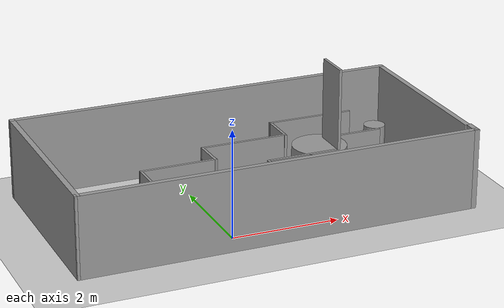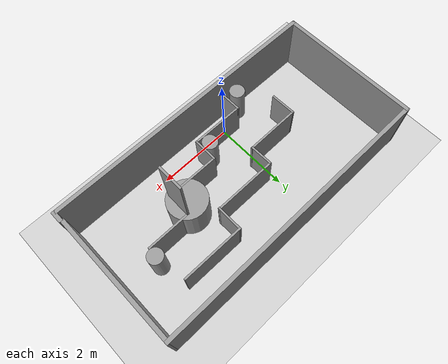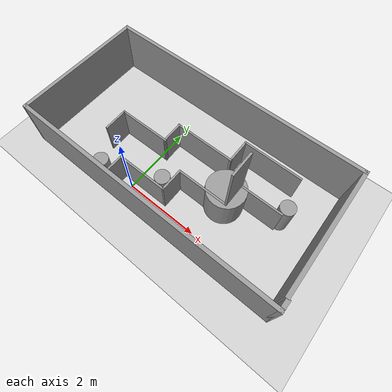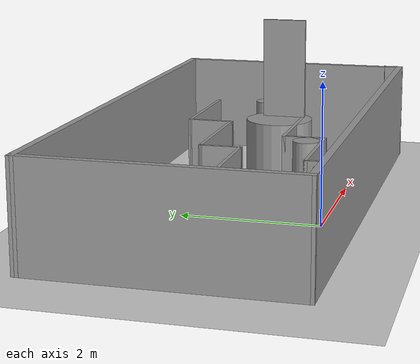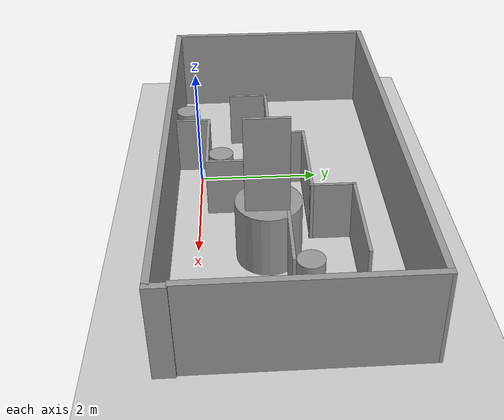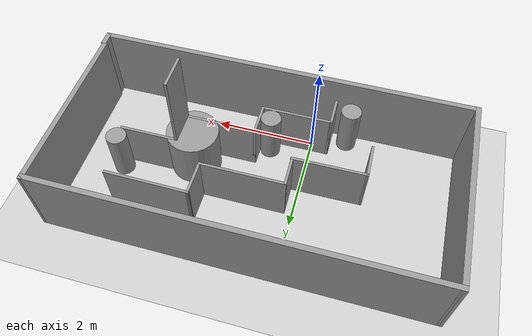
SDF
<sdf version="1.7">
 <world name="default">
  <light name="sun" type="directional">
   <pose>0 0 10 0 -0 0</pose>
   <diffuse>0.8 0.8 0.8 1</diffuse>
   <specular>0.2 0.2 0.2 1</specular>
   <attenuation>
    <range>1000</range>
    <constant>0.9</constant>
    <linear>0.01</linear>
    <quadratic>0.001</quadratic>
   </attenuation>
   <direction>-0.5 0.1 -0.9</direction>
   <spot><inner_angle>0</inner_angle><outer_angle>0</outer_angle><falloff>0</falloff></spot>
  </light>
  <model name="ground_plane">
   <static>1</static>
   <link name="link">
    <collision name="collision">
     <geometry><plane><normal>0 0 1</normal><size>100 100</size></plane></geometry>
     <surface><friction><ode><mu>100</mu><mu2>50</mu2></ode></friction></surface>
    </collision>
    <visual name="visual">
     <cast_shadows>0</cast_shadows>
     <geometry><plane><normal>0 0 1</normal><size>100 100</size></plane></geometry>
     <material>
      <script><uri>file://media/materials/scripts/gazebo.material</uri><name>Gazebo/Grey</name></script>
     </material>
    </visual>
   </link>
  </model>
  <gravity>0 0 -9.8</gravity>
  <magnetic_field>6e-06 2.3e-05 -4.2e-05</magnetic_field>
  <atmosphere type="adiabatic"/>
  <physics type="ode">
   <max_step_size>0.001</max_step_size>
   <real_time_factor>1</real_time_factor>
   <real_time_update_rate>1000</real_time_update_rate>
  </physics>
  <scene><ambient>0.4 0.4 0.4 1</ambient><background>0.7 0.7 0.7 1</background><shadows>1</shadows></scene>
  <audio><device>default</device></audio>
  <spherical_coordinates>
   <surface_model>EARTH_WGS84</surface_model>
   <latitude_deg>0</latitude_deg>
   <longitude_deg>0</longitude_deg>
   <elevation>0</elevation>
   <heading_deg>0</heading_deg>
  </spherical_coordinates>
  <model name="Parcial_ampliado">
   <pose>0.760831 1.34394 0 0 -0 0</pose>
   <link name="Wall_0">
    <collision name="Wall_0_Collision">
     <geometry><box><size>3.41 0.1 1.5</size></box></geometry>
     <pose>0 0 0.75 0 -0 0</pose>
    </collision>
    <visual name="Wall_0_Visual">
     <pose>0 0 0.75 0 -0 0</pose>
     <geometry><box><size>3.41 0.1 1.5</size></box></geometry>
     <material>
      <script><uri>file://media/materials/scripts/gazebo.material</uri><name>Gazebo/Grey</name></script>
      <ambient>1 1 1 1</ambient>
     </material>
     <meta><layer>0</layer></meta>
    </visual>
    <pose>3.64507 0.144998 0 0 -0 1.57382</pose>
   </link>
   <link name="Wall_1">
    <collision name="Wall_1_Collision">
     <geometry><box><size>7.42 0.1 1.5</size></box></geometry>
     <pose>0 0 0.75 0 -0 0</pose>
    </collision>
    <visual name="Wall_1_Visual">
     <pose>0 0 0.75 0 -0 0</pose>
     <geometry><box><size>7.42 0.1 1.5</size></box></geometry>
     <material>
      <script><uri>file://media/materials/scripts/gazebo.material</uri><name>Gazebo/Grey</name></script>
      <ambient>1 1 1 1</ambient>
     </material>
     <meta><layer>0</layer></meta>
    </visual>
    <pose>-0.019931 1.8 0 0 -0 3.14159</pose>
   </link>
   <link name="Wall_10">
    <collision name="Wall_10_Collision">
     <geometry><box><size>0.65 0.05 1</size></box></geometry>
     <pose>0 0 0.5 0 -0 0</pose>
    </collision>
    <visual name="Wall_10_Visual">
     <pose>0 0 0.5 0 -0 0</pose>
     <geometry><box><size>0.65 0.05 1</size></box></geometry>
     <material>
      <script><uri>file://media/materials/scripts/gazebo.material</uri><name>Gazebo/Grey</name></script>
      <ambient>1 1 1 1</ambient>
     </material>
     <meta><layer>0</layer></meta>
    </visual>
    <pose>-1.09993 -1.49 0 0 -0 1.5708</pose>
   </link>
   <link name="Wall_11">
    <collision name="Wall_11_Collision">
     <geometry><box><size>1.4 0.05 1</size></box></geometry>
     <pose>0 0 0.5 0 -0 0</pose>
    </collision>
    <visual name="Wall_11_Visual">
     <pose>0 0 0.5 0 -0 0</pose>
     <geometry><box><size>1.4 0.05 1</size></box></geometry>
     <material>
      <script><uri>file://media/materials/scripts/gazebo.material</uri><name>Gazebo/Grey</name></script>
      <ambient>1 1 1 1</ambient>
     </material>
     <meta><layer>0</layer></meta>
    </visual>
    <pose>-0.424931 -1.19 0 0 -0 0</pose>
   </link>
   <link name="Wall_12">
    <collision name="Wall_12_Collision">
     <geometry><box><size>0.65 0.05 1</size></box></geometry>
     <pose>0 0 0.5 0 -0 0</pose>
    </collision>
    <visual name="Wall_12_Visual">
     <pose>0 0 0.5 0 -0 0</pose>
     <geometry><box><size>0.65 0.05 1</size></box></geometry>
     <material>
      <script><uri>file://media/materials/scripts/gazebo.material</uri><name>Gazebo/Grey</name></script>
      <ambient>1 1 1 1</ambient>
     </material>
     <meta><layer>0</layer></meta>
    </visual>
    <pose>0.250069 -0.890002 0 0 -0 1.5708</pose>
   </link>
   <link name="Wall_13">
    <collision name="Wall_13_Collision">
     <geometry><box><size>1.4 0.05 1</size></box></geometry>
     <pose>0 0 0.5 0 -0 0</pose>
    </collision>
    <visual name="Wall_13_Visual">
     <pose>0 0 0.5 0 -0 0</pose>
     <geometry><box><size>1.4 0.05 1</size></box></geometry>
     <material>
      <script><uri>file://media/materials/scripts/gazebo.material</uri><name>Gazebo/Grey</name></script>
      <ambient>1 1 1 1</ambient>
     </material>
     <meta><layer>0</layer></meta>
    </visual>
    <pose>0.925069 -0.590002 0 0 -0 0</pose>
   </link>
   <link name="Wall_14">
    <collision name="Wall_14_Collision">
     <geometry><box><size>0.65 0.05 2.5</size></box></geometry>
     <pose>0 0 1.25 0 -0 0</pose>
    </collision>
    <visual name="Wall_14_Visual">
     <pose>0 0 1.25 0 -0 0</pose>
     <geometry><box><size>0.65 0.05 2.5</size></box></geometry>
     <material>
      <script><uri>file://media/materials/scripts/gazebo.material</uri><name>Gazebo/Grey</name></script>
      <ambient>1 1 1 1</ambient>
     </material>
     <meta><layer>0</layer></meta>
    </visual>
    <pose>1.60007 -0.290002 0 0 -0 1.5708</pose>
   </link>
   <link name="Wall_15">
    <collision name="Wall_15_Collision">
     <geometry><box><size>1.15 0.05 1</size></box></geometry>
     <pose>0 0 0.5 0 -0 0</pose>
    </collision>
    <visual name="Wall_15_Visual">
     <pose>0 0 0.5 0 -0 0</pose>
     <geometry><box><size>1.15 0.05 1</size></box></geometry>
     <material>
      <script><uri>file://media/materials/scripts/gazebo.material</uri><name>Gazebo/Grey</name></script>
      <ambient>1 1 1 1</ambient>
     </material>
     <meta><layer>0</layer></meta>
    </visual>
    <pose>2.15007 0.009998 0 0 -0 0</pose>
   </link>
   <link name="Wall_18">
    <collision name="Wall_18_Collision">
     <geometry><box><size>1.45004 0.05 1</size></box></geometry>
     <pose>0 0 0.5 0 -0 0</pose>
    </collision>
    <visual name="Wall_18_Visual">
     <pose>0 0 0.5 0 -0 0</pose>
     <geometry><box><size>1.45004 0.05 1</size></box></geometry>
     <material>
      <script><uri>file://media/materials/scripts/gazebo.material</uri><name>Gazebo/Grey</name></script>
      <ambient>1 1 1 1</ambient>
     </material>
     <meta><layer>0</layer></meta>
    </visual>
    <pose>-1.27993 -0.165002 0 0 -0 0.007143</pose>
   </link>
   <link name="Wall_19">
    <collision name="Wall_19_Collision">
     <geometry><box><size>0.610089 0.05 1</size></box></geometry>
     <pose>0 0 0.5 0 -0 0</pose>
    </collision>
    <visual name="Wall_19_Visual">
     <pose>0 0 0.5 0 -0 0</pose>
     <geometry><box><size>0.610089 0.05 1</size></box></geometry>
     <material>
      <script><uri>file://media/materials/scripts/gazebo.material</uri><name>Gazebo/Grey</name></script>
      <ambient>1 1 1 1</ambient>
     </material>
     <meta><layer>0</layer></meta>
    </visual>
    <pose>-0.594931 0.119998 0 0 -0 1.58865</pose>
   </link>
   <link name="Wall_20">
    <collision name="Wall_20_Collision">
     <geometry><box><size>1.66028 0.05 1</size></box></geometry>
     <pose>0 0 0.5 0 -0 0</pose>
    </collision>
    <visual name="Wall_20_Visual">
     <pose>0 0 0.5 0 -0 0</pose>
     <geometry><box><size>1.66028 0.05 1</size></box></geometry>
     <material>
      <script><uri>file://media/materials/scripts/gazebo.material</uri><name>Gazebo/Grey</name></script>
      <ambient>1 1 1 1</ambient>
     </material>
     <meta><layer>0</layer></meta>
    </visual>
    <pose>0.205069 0.409998 0 0 -0 0</pose>
   </link>
   <link name="Wall_21">
    <collision name="Wall_21_Collision">
     <geometry><box><size>0.7 0.05 1</size></box></geometry>
     <pose>0 0 0.5 0 -0 0</pose>
    </collision>
    <visual name="Wall_21_Visual">
     <pose>0 0 0.5 0 -0 0</pose>
     <geometry><box><size>0.7 0.05 1</size></box></geometry>
     <material>
      <script><uri>file://media/materials/scripts/gazebo.material</uri><name>Gazebo/Grey</name></script>
      <ambient>1 1 1 1</ambient>
     </material>
     <meta><layer>0</layer></meta>
    </visual>
    <pose>1.01007 0.724998 0 0 -0 1.5708</pose>
   </link>
   <link name="Wall_22">
    <collision name="Wall_22_Collision">
     <geometry><box><size>1.63 0.05 1</size></box></geometry>
     <pose>0 0 0.5 0 -0 0</pose>
    </collision>
    <visual name="Wall_22_Visual">
     <pose>0 0 0.5 0 -0 0</pose>
     <geometry><box><size>1.63 0.05 1</size></box></geometry>
     <material>
      <script><uri>file://media/materials/scripts/gazebo.material</uri><name>Gazebo/Grey</name></script>
      <ambient>1 1 1 1</ambient>
     </material>
     <meta><layer>0</layer></meta>
    </visual>
    <pose>1.80007 1.045 0 0 -0 -0.006329</pose>
   </link>
   <link name="Wall_27">
    <collision name="Wall_27_Collision">
     <geometry><box><size>0.680079 0.05 1</size></box></geometry>
     <pose>0 0 0.5 0 -0 0</pose>
    </collision>
    <visual name="Wall_27_Visual">
     <pose>0 0 0.5 0 -0 0</pose>
     <geometry><box><size>0.680079 0.05 1</size></box></geometry>
     <material>
      <script><uri>file://media/materials/scripts/gazebo.material</uri><name>Gazebo/Grey</name></script>
      <ambient>1 1 1 1</ambient>
     </material>
     <meta><layer>0</layer></meta>
    </visual>
    <pose>-1.97493 -0.485002 0 0 -0 -1.55492</pose>
   </link>
   <link name="Wall_6">
    <collision name="Wall_6_Collision">
     <geometry><box><size>3.70001 0.1 1.5</size></box></geometry>
     <pose>0 0 0.75 0 -0 0</pose>
    </collision>
    <visual name="Wall_6_Visual">
     <pose>0 0 0.75 0 -0 0</pose>
     <geometry><box><size>3.70001 0.1 1.5</size></box></geometry>
     <material>
      <script><uri>file://media/materials/scripts/gazebo.material</uri><name>Gazebo/Grey</name></script>
      <ambient>1 1 1 1</ambient>
     </material>
     <meta><layer>0</layer></meta>
    </visual>
    <pose>-3.67493 -2e-06 0 0 -0 -1.56802</pose>
   </link>
   <link name="Wall_7">
    <collision name="Wall_7_Collision">
     <geometry><box><size>7.45 0.1 1.5</size></box></geometry>
     <pose>0 0 0.75 0 -0 0</pose>
    </collision>
    <visual name="Wall_7_Visual">
     <pose>0 0 0.75 0 -0 0</pose>
     <geometry><box><size>7.45 0.1 1.5</size></box></geometry>
     <material>
      <script><uri>file://media/materials/scripts/gazebo.material</uri><name>Gazebo/Grey</name></script>
      <ambient>1 1 1 1</ambient>
     </material>
     <meta><layer>0</layer></meta>
    </visual>
    <pose>0.005069 -1.8 0 0 -0 0</pose>
   </link>
   <link name="Wall_8">
    <collision name="Wall_8_Collision">
     <geometry><box><size>0.31 0.1 1.5</size></box></geometry>
     <pose>0 0 0.75 0 -0 0</pose>
    </collision>
    <visual name="Wall_8_Visual">
     <pose>0 0 0.75 0 -0 0</pose>
     <geometry><box><size>0.31 0.1 1.5</size></box></geometry>
     <material>
      <script><uri>file://media/materials/scripts/gazebo.material</uri><name>Gazebo/Grey</name></script>
      <ambient>1 1 1 1</ambient>
     </material>
     <meta><layer>0</layer></meta>
    </visual>
    <pose>3.68007 -1.695 0 0 -0 1.5708</pose>
   </link>
   <static>1</static>
  </model>
  <model name="unit_cylinder">
   <pose>2.13968 1.07954 0.499991 0 -0 7e-06</pose>
   <link name="link">
    <inertial>
     <mass>1</mass>
     <inertia><ixx>0.145833</ixx><ixy>0</ixy><ixz>0</ixz><iyy>0.145833</iyy><iyz>0</iyz><izz>0.125</izz></inertia>
    </inertial>
    <collision name="collision">
     <geometry><cylinder><radius>0.500002</radius><length>1</length></cylinder></geometry>
    </collision>
    <visual name="visual">
     <geometry><cylinder><radius>0.500002</radius><length>1</length></cylinder></geometry>
     <material>
      <script><name>Gazebo/Grey</name><uri>file://media/materials/scripts/gazebo.material</uri></script>
     </material>
    </visual>
   </link>
  </model>
  <model name="unit_cylinder_clone">
   <pose>0.789647 0.375173 0.499991 0 -0 -0.021439</pose>
   <link name="link">
    <inertial>
     <mass>1</mass>
     <inertia><ixx>0.145833</ixx><ixy>0</ixy><ixz>0</ixz><iyy>0.145833</iyy><iyz>0</iyz><izz>0.125</izz></inertia>
    </inertial>
    <collision name="collision">
     <geometry><cylinder><radius>0.196216</radius><length>1</length></cylinder></geometry>
    </collision>
    <visual name="visual">
     <geometry><cylinder><radius>0.196216</radius><length>1</length></cylinder></geometry>
     <material>
      <script><name>Gazebo/Grey</name><uri>file://media/materials/scripts/gazebo.material</uri></script>
     </material>
    </visual>
   </link>
  </model>
  <model name="unit_cylinder_clone_clone">
   <pose>-0.671817 -0.209644 0.499999 0 -0 -0.023994</pose>
   <link name="link">
    <inertial>
     <mass>1</mass>
     <inertia><ixx>0.145833</ixx><ixy>0</ixy><ixz>0</ixz><iyy>0.145833</iyy><iyz>0</iyz><izz>0.125</izz></inertia>
    </inertial>
    <collision name="collision">
     <geometry><cylinder><radius>0.196216</radius><length>1</length></cylinder></geometry>
    </collision>
    <visual name="visual">
     <geometry><cylinder><radius>0.196216</radius><length>1</length></cylinder></geometry>
     <material>
      <script><name>Gazebo/Grey</name><uri>file://media/materials/scripts/gazebo.material</uri></script>
     </material>
    </visual>
   </link>
  </model>
  <model name="unit_cylinder_clone_0">
   <pose>3.4891 1.57518 0.499999 0 -0 -0.836201</pose>
   <link name="link">
    <inertial>
     <mass>1</mass>
     <inertia><ixx>0.145833</ixx><ixy>0</ixy><ixz>0</ixz><iyy>0.145833</iyy><iyz>0</iyz><izz>0.125</izz></inertia>
    </inertial>
    <collision name="collision">
     <geometry><cylinder><radius>0.196216</radius><length>1</length></cylinder></geometry>
    </collision>
    <visual name="visual">
     <geometry><cylinder><radius>0.196216</radius><length>1</length></cylinder></geometry>
     <material>
      <script><name>Gazebo/Grey</name><uri>file://media/materials/scripts/gazebo.material</uri></script>
     </material>
    </visual>
   </link>
  </model>
 </world>
</sdf>
